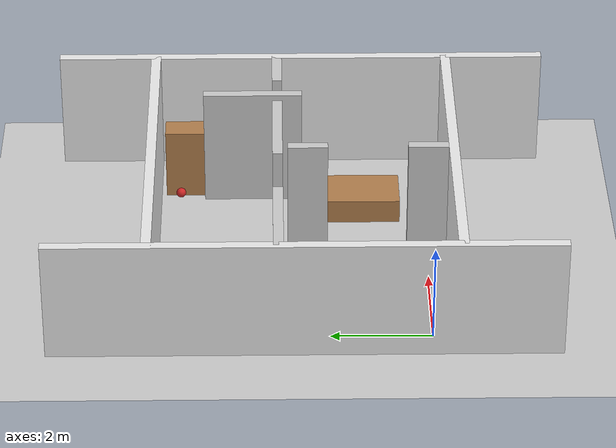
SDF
<?xml version="1.0"?>
<sdf version="1.7">
  <world name="hospital_floor">
    <!-- Physics engine -->
    <physics type="ode">
      <real_time_update_rate>1000</real_time_update_rate>
      <max_step_size>0.001</max_step_size>
      <real_time_factor>1</real_time_factor>
      <ode>
        <solver>
          <type>quick</type>
          <iters>50</iters>
        </solver>
        <constraints>
          <cfm>0.0</cfm>
          <erp>0.2</erp>
        </constraints>
      </ode>
    </physics>

    <!-- Scene configuration -->
    <scene>
      <ambient>0.4 0.4 0.4 1</ambient>
      <background>0.7 0.7 0.7 1</background>
      <shadows>true</shadows>
    </scene>

    <!-- Sun light -->
    <light name="sun" type="directional">
      <position>0 0 10</position>
      <direction>-0.5 0.5 -1</direction>
      <ambient>1 1 1 1</ambient>
      <diffuse>1 1 1 1</diffuse>
      <specular>0.2 0.2 0.2 1</specular>
      <cast_shadows>true</cast_shadows>
    </light>

    <!-- Ground plane -->
    <model name="ground_plane">
      <static>true</static>
      <link name="link">
        <collision name="collision">
          <geometry>
            <plane>
              <normal>0 0 1</normal>
              <size>20 20</size>
            </plane>
          </geometry>
        </collision>
        <visual name="visual">
          <geometry>
            <plane>
              <normal>0 0 1</normal>
              <size>20 20</size>
            </plane>
          </geometry>
          <material>
            <script>
              <uri>file://media/materials/scripts/gazebo.material</uri>
              <name>Gazebo/Grey</name>
            </script>
          </material>
        </visual>
      </link>
    </model>

    <!-- =========== HOSPITAL LAYOUT =========== -->

    <!-- Outer boundary walls -->
    <!-- West wall -->
    <model name="wall_west">
      <static>true</static>
      <link name="link">
        <collision name="collision">
          <geometry>
            <box>
              <size>0.2 10 2.5</size>
            </box>
          </geometry>
        </collision>
        <visual name="visual">
          <geometry>
            <box>
              <size>0.2 10 2.5</size>
            </box>
          </geometry>
          <material>
            <script>
              <uri>file://media/materials/scripts/gazebo.material</uri>
              <name>Gazebo/White</name>
            </script>
          </material>
        </visual>
      </link>
      <pose>-0.5 2.5 1.25 0 0 0</pose>
    </model>

    <!-- East wall -->
    <model name="wall_east">
      <static>true</static>
      <link name="link">
        <collision name="collision">
          <geometry>
            <box>
              <size>0.2 10 2.5</size>
            </box>
          </geometry>
        </collision>
        <visual name="visual">
          <geometry>
            <box>
              <size>0.2 10 2.5</size>
            </box>
          </geometry>
          <material>
            <script>
              <uri>file://media/materials/scripts/gazebo.material</uri>
              <name>Gazebo/White</name>
            </script>
          </material>
        </visual>
      </link>
      <pose>6.5 2.5 1.25 0 0 0</pose>
    </model>

    <!-- North wall -->
    <model name="wall_north">
      <static>true</static>
      <link name="link">
        <collision name="collision">
          <geometry>
            <box>
              <size>7 0.2 2.5</size>
            </box>
          </geometry>
        </collision>
        <visual name="visual">
          <geometry>
            <box>
              <size>7 0.2 2.5</size>
            </box>
          </geometry>
          <material>
            <script>
              <uri>file://media/materials/scripts/gazebo.material</uri>
              <name>Gazebo/White</name>
            </script>
          </material>
        </visual>
      </link>
      <pose>3 5.5 1.25 0 0 0</pose>
    </model>

    <!-- South wall -->
    <model name="wall_south">
      <static>true</static>
      <link name="link">
        <collision name="collision">
          <geometry>
            <box>
              <size>7 0.2 2.5</size>
            </box>
          </geometry>
        </collision>
        <visual name="visual">
          <geometry>
            <box>
              <size>7 0.2 2.5</size>
            </box>
          </geometry>
          <material>
            <script>
              <uri>file://media/materials/scripts/gazebo.material</uri>
              <name>Gazebo/White</name>
            </script>
          </material>
        </visual>
      </link>
      <pose>3 -0.5 1.25 0 0 0</pose>
    </model>

    <!-- ========== INTERIOR WALLS ========== -->

    <!-- Dividing wall between rooms A and B (vertical, with doorway) -->
    <model name="wall_ab_lower">
      <static>true</static>
      <link name="link">
        <collision name="collision">
          <geometry><box><size>0.2 0.8 2.5</size></box></geometry>
        </collision>
        <visual name="visual">
          <geometry><box><size>0.2 0.8 2.5</size></box></geometry>
          <material><script>
            <uri>file://media/materials/scripts/gazebo.material</uri>
            <name>Gazebo/LightGrey</name>
          </script></material>
        </visual>
      </link>
      <pose>3.0 0.0 1.25 0 0 0</pose>
    </model>
    <model name="wall_ab_upper">
      <static>true</static>
      <link name="link">
        <collision name="collision">
          <geometry><box><size>0.2 0.8 2.5</size></box></geometry>
        </collision>
        <visual name="visual">
          <geometry><box><size>0.2 0.8 2.5</size></box></geometry>
          <material><script>
            <uri>file://media/materials/scripts/gazebo.material</uri>
            <name>Gazebo/LightGrey</name>
          </script></material>
        </visual>
      </link>
      <pose>3.0 2.4 1.25 0 0 0</pose>
    </model>

    <!-- Dividing wall between rooms B and C (vertical) -->
    <model name="wall_bc_divider">
      <static>true</static>
      <link name="link">
        <collision name="collision">
          <geometry>
            <box>
              <size>0.2 2 2.5</size>
            </box>
          </geometry>
        </collision>
        <visual name="visual">
          <geometry>
            <box>
              <size>0.2 2 2.5</size>
            </box>
          </geometry>
          <material>
            <script>
              <uri>file://media/materials/scripts/gazebo.material</uri>
              <name>Gazebo/LightGrey</name>
            </script>
          </material>
        </visual>
      </link>
      <pose>5.0 3.5 1.25 0 0 0</pose>
    </model>

    <!-- Horizontal divider (top-bottom separation, with doorway) -->
    <model name="wall_horiz_left">
      <static>true</static>
      <link name="link">
        <collision name="collision">
          <geometry><box><size>2.0 0.2 2.5</size></box></geometry>
        </collision>
        <visual name="visual">
          <geometry><box><size>2.0 0.2 2.5</size></box></geometry>
          <material><script>
            <uri>file://media/materials/scripts/gazebo.material</uri>
            <name>Gazebo/LightGrey</name>
          </script></material>
        </visual>
      </link>
      <pose>0.5 3.0 1.25 0 0 0</pose>
    </model>
    <!-- Doorway gap at X=1.5 to X=2.7 (1.2m gap) -->
    <model name="wall_horiz_middle">
      <static>true</static>
      <link name="link">
        <collision name="collision">
          <geometry><box><size>2.0 0.2 2.5</size></box></geometry>
        </collision>
        <visual name="visual">
          <geometry><box><size>2.0 0.2 2.5</size></box></geometry>
          <material><script>
            <uri>file://media/materials/scripts/gazebo.material</uri>
            <name>Gazebo/LightGrey</name>
          </script></material>
        </visual>
      </link>
      <pose>3.7 3.0 1.25 0 0 0</pose>
    </model>
    <!-- Doorway gap at X=4.7 to X=5.3 (0.6m gap for room C access) -->
    <model name="wall_horiz_right">
      <static>true</static>
      <link name="link">
        <collision name="collision">
          <geometry><box><size>1.0 0.2 2.5</size></box></geometry>
        </collision>
        <visual name="visual">
          <geometry><box><size>1.0 0.2 2.5</size></box></geometry>
          <material><script>
            <uri>file://media/materials/scripts/gazebo.material</uri>
            <name>Gazebo/LightGrey</name>
          </script></material>
        </visual>
      </link>
      <pose>6.0 3.0 1.25 0 0 0</pose>
    </model>

    <!-- ========== OBSTACLES / FURNITURE ========== -->

    <!-- Table in room A -->
    <model name="table_a">
      <static>true</static>
      <link name="link">
        <collision name="collision">
          <geometry>
            <box>
              <size>0.8 0.6 0.7</size>
            </box>
          </geometry>
        </collision>
        <visual name="visual">
          <geometry>
            <box>
              <size>0.8 0.6 0.7</size>
            </box>
          </geometry>
          <material>
            <script>
              <uri>file://media/materials/scripts/gazebo.material</uri>
              <name>Gazebo/Wood</name>
            </script>
          </material>
        </visual>
      </link>
      <pose>1.5 0.8 0.35 0 0 0</pose>
    </model>

    <!-- Chair in room A -->
    <model name="chair_a">
      <static>true</static>
      <link name="link">
        <collision name="collision">
          <geometry>
            <cylinder>
              <radius>0.25</radius>
              <length>0.7</length>
            </cylinder>
          </geometry>
        </collision>
        <visual name="visual">
          <geometry>
            <cylinder>
              <radius>0.25</radius>
              <length>0.7</length>
            </cylinder>
          </geometry>
          <material>
            <script>
              <uri>file://media/materials/scripts/gazebo.material</uri>
              <name>Gazebo/Wood</name>
            </script>
          </material>
        </visual>
      </link>
      <pose>0.7 1.8 0.35 0 0 0</pose>
    </model>

    <!-- Bed in room B -->
    <model name="bed_b">
      <static>true</static>
      <link name="link">
        <collision name="collision">
          <geometry>
            <box>
              <size>1.0 2.0 0.5</size>
            </box>
          </geometry>
        </collision>
        <visual name="visual">
          <geometry>
            <box>
              <size>1.0 2.0 0.5</size>
            </box>
          </geometry>
          <material>
            <script>
              <uri>file://media/materials/scripts/gazebo.material</uri>
              <name>Gazebo/Wood</name>
            </script>
          </material>
        </visual>
      </link>
      <pose>4.5 1.5 0.25 0 0 0</pose>
    </model>

    <!-- Cabinet in room C -->
    <model name="cabinet_c">
      <static>true</static>
      <link name="link">
        <collision name="collision">
          <geometry>
            <box>
              <size>0.5 1.0 1.5</size>
            </box>
          </geometry>
        </collision>
        <visual name="visual">
          <geometry>
            <box>
              <size>0.5 1.0 1.5</size>
            </box>
          </geometry>
          <material>
            <script>
              <uri>file://media/materials/scripts/gazebo.material</uri>
              <name>Gazebo/Wood</name>
            </script>
          </material>
        </visual>
      </link>
      <pose>5.3 4.8 0.75 0 0 0</pose>
    </model>

    <!-- ========== NAVIGATION MARKERS ========== -->

    <!-- Room A marker (visual only) -->
    <model name="room_a_marker">
      <static>true</static>
      <link name="link">
        <visual name="visual">
          <geometry>
            <sphere>
              <radius>0.1</radius>
            </sphere>
          </geometry>
          <material>
            <script>
              <uri>file://media/materials/scripts/gazebo.material</uri>
              <name>Gazebo/Blue</name>
            </script>
          </material>
        </visual>
      </link>
      <pose>1.0 1.0 0.1 0 0 0</pose>
    </model>

    <!-- Room B marker (visual only) -->
    <model name="room_b_marker">
      <static>true</static>
      <link name="link">
        <visual name="visual">
          <geometry>
            <sphere>
              <radius>0.1</radius>
            </sphere>
          </geometry>
          <material>
            <script>
              <uri>file://media/materials/scripts/gazebo.material</uri>
              <name>Gazebo/Green</name>
            </script>
          </material>
        </visual>
      </link>
      <pose>5.0 1.0 0.1 0 0 0</pose>
    </model>

    <!-- Room C marker (visual only) -->
    <model name="room_c_marker">
      <static>true</static>
      <link name="link">
        <visual name="visual">
          <geometry>
            <sphere>
              <radius>0.1</radius>
            </sphere>
          </geometry>
          <material>
            <script>
              <uri>file://media/materials/scripts/gazebo.material</uri>
              <name>Gazebo/Red</name>
            </script>
          </material>
        </visual>
      </link>
      <pose>5.0 5.0 0.1 0 0 0</pose>
    </model>

    <!-- Dock marker (visual only, charging station) -->
    <model name="dock_marker">
      <static>true</static>
      <link name="link">
        <visual name="visual">
          <geometry>
            <sphere>
              <radius>0.1</radius>
            </sphere>
          </geometry>
          <material>
            <script>
              <uri>file://media/materials/scripts/gazebo.material</uri>
              <name>Gazebo/Yellow</name>
            </script>
          </material>
        </visual>
      </link>
      <pose>0.5 0.5 0.1 0 0 0</pose>
    </model>

  </world>
</sdf>
